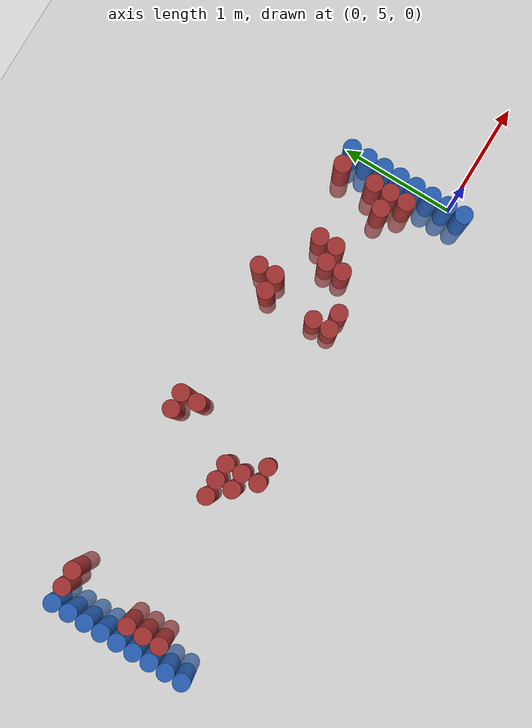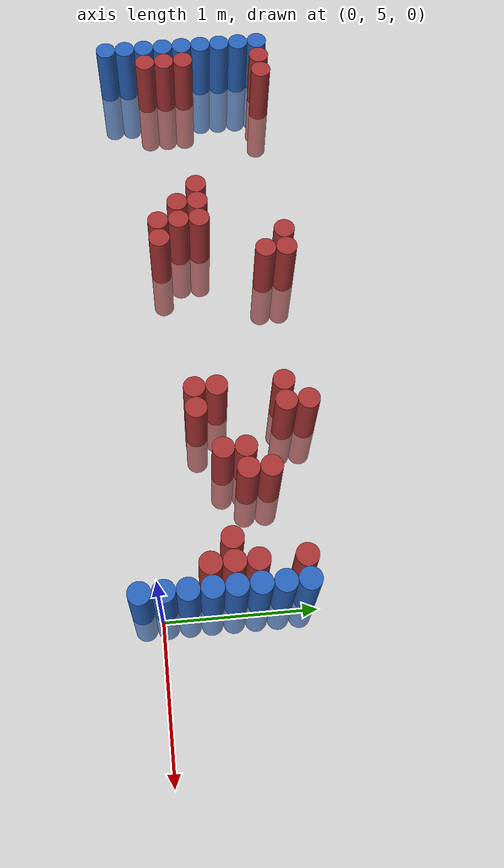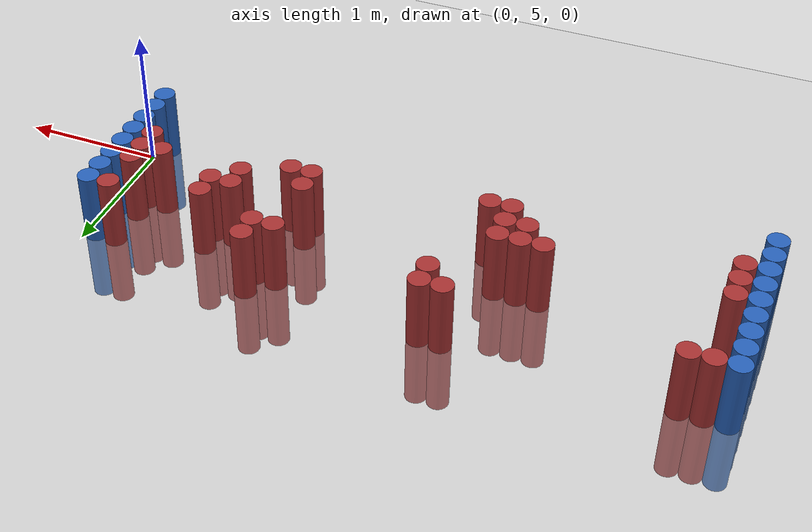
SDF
<sdf version="1.6">
 <world name="world_92">
  <model name="ground_plane">
   <static>1</static>
   <link name="link">
    <collision name="collision">
     <geometry><plane><normal>0 0 1</normal><size>100 100</size></plane></geometry>
     <surface><friction><ode><mu>100</mu><mu2>50</mu2></ode></friction></surface>
    </collision>
    <visual name="visual">
     <cast_shadows>0</cast_shadows>
     <geometry><plane><normal>0 0 1</normal><size>100 100</size></plane></geometry>
     <material>
      <script><uri>file://media/materials/scripts/gazebo.material</uri><name>Gazebo/Grey</name></script>
     </material>
    </visual>
   </link>
  </model>
  <model name="unit_cylinder_92">
   <static>1</static>
   <pose>-0.075000 4.875000 0.000000 0.000000 0.000000 0.000000</pose>
   <link name="link">
    <inertial>
     <mass>1</mass>
     <inertia><ixx>0.145833</ixx><ixy>0</ixy><ixz>0</ixz><iyy>0.145833</iyy><iyz>0</iyz><izz>0.125</izz></inertia>
    </inertial>
    <collision name="collision">
     <geometry><cylinder><radius>0.075000</radius><length>1</length></cylinder></geometry>
    </collision>
    <visual name="visual">
     <geometry><cylinder><radius>0.075000</radius><length>1</length></cylinder></geometry>
     <material>
      <ambient>0.152000 0.379000 0.720000 1</ambient>
      <diffuse>0.152000 0.379000 0.720000 1</diffuse>
     </material>
     <material>
      <script><name>Gazebo/Grey</name><uri>file://media/materials/scripts/gazebo.material</uri></script>
     </material>
    </visual>
   </link>
  </model>
  <model name="unit_cylinder_93">
   <static>1</static>
   <pose>-4.425000 4.875000 0.000000 0.000000 0.000000 0.000000</pose>
   <link name="link">
    <inertial>
     <mass>1</mass>
     <inertia><ixx>0.145833</ixx><ixy>0</ixy><ixz>0</ixz><iyy>0.145833</iyy><iyz>0</iyz><izz>0.125</izz></inertia>
    </inertial>
    <collision name="collision">
     <geometry><cylinder><radius>0.075000</radius><length>1</length></cylinder></geometry>
    </collision>
    <visual name="visual">
     <geometry><cylinder><radius>0.075000</radius><length>1</length></cylinder></geometry>
     <material>
      <ambient>0.152000 0.379000 0.720000 1</ambient>
      <diffuse>0.152000 0.379000 0.720000 1</diffuse>
     </material>
     <material>
      <script><name>Gazebo/Grey</name><uri>file://media/materials/scripts/gazebo.material</uri></script>
     </material>
    </visual>
   </link>
  </model>
  <model name="unit_cylinder_94">
   <static>1</static>
   <pose>-0.075000 5.025000 0.000000 0.000000 0.000000 0.000000</pose>
   <link name="link">
    <inertial>
     <mass>1</mass>
     <inertia><ixx>0.145833</ixx><ixy>0</ixy><ixz>0</ixz><iyy>0.145833</iyy><iyz>0</iyz><izz>0.125</izz></inertia>
    </inertial>
    <collision name="collision">
     <geometry><cylinder><radius>0.075000</radius><length>1</length></cylinder></geometry>
    </collision>
    <visual name="visual">
     <geometry><cylinder><radius>0.075000</radius><length>1</length></cylinder></geometry>
     <material>
      <ambient>0.152000 0.379000 0.720000 1</ambient>
      <diffuse>0.152000 0.379000 0.720000 1</diffuse>
     </material>
     <material>
      <script><name>Gazebo/Grey</name><uri>file://media/materials/scripts/gazebo.material</uri></script>
     </material>
    </visual>
   </link>
  </model>
  <model name="unit_cylinder_95">
   <static>1</static>
   <pose>-4.425000 5.025000 0.000000 0.000000 0.000000 0.000000</pose>
   <link name="link">
    <inertial>
     <mass>1</mass>
     <inertia><ixx>0.145833</ixx><ixy>0</ixy><ixz>0</ixz><iyy>0.145833</iyy><iyz>0</iyz><izz>0.125</izz></inertia>
    </inertial>
    <collision name="collision">
     <geometry><cylinder><radius>0.075000</radius><length>1</length></cylinder></geometry>
    </collision>
    <visual name="visual">
     <geometry><cylinder><radius>0.075000</radius><length>1</length></cylinder></geometry>
     <material>
      <ambient>0.152000 0.379000 0.720000 1</ambient>
      <diffuse>0.152000 0.379000 0.720000 1</diffuse>
     </material>
     <material>
      <script><name>Gazebo/Grey</name><uri>file://media/materials/scripts/gazebo.material</uri></script>
     </material>
    </visual>
   </link>
  </model>
  <model name="unit_cylinder_96">
   <static>1</static>
   <pose>-4.425000 5.175000 0.000000 0.000000 0.000000 0.000000</pose>
   <link name="link">
    <inertial>
     <mass>1</mass>
     <inertia><ixx>0.145833</ixx><ixy>0</ixy><ixz>0</ixz><iyy>0.145833</iyy><iyz>0</iyz><izz>0.125</izz></inertia>
    </inertial>
    <collision name="collision">
     <geometry><cylinder><radius>0.075000</radius><length>1</length></cylinder></geometry>
    </collision>
    <visual name="visual">
     <geometry><cylinder><radius>0.075000</radius><length>1</length></cylinder></geometry>
     <material>
      <ambient>0.152000 0.379000 0.720000 1</ambient>
      <diffuse>0.152000 0.379000 0.720000 1</diffuse>
     </material>
     <material>
      <script><name>Gazebo/Grey</name><uri>file://media/materials/scripts/gazebo.material</uri></script>
     </material>
    </visual>
   </link>
  </model>
  <model name="unit_cylinder_97">
   <static>1</static>
   <pose>-4.425000 5.325000 0.000000 0.000000 0.000000 0.000000</pose>
   <link name="link">
    <inertial>
     <mass>1</mass>
     <inertia><ixx>0.145833</ixx><ixy>0</ixy><ixz>0</ixz><iyy>0.145833</iyy><iyz>0</iyz><izz>0.125</izz></inertia>
    </inertial>
    <collision name="collision">
     <geometry><cylinder><radius>0.075000</radius><length>1</length></cylinder></geometry>
    </collision>
    <visual name="visual">
     <geometry><cylinder><radius>0.075000</radius><length>1</length></cylinder></geometry>
     <material>
      <ambient>0.152000 0.379000 0.720000 1</ambient>
      <diffuse>0.152000 0.379000 0.720000 1</diffuse>
     </material>
     <material>
      <script><name>Gazebo/Grey</name><uri>file://media/materials/scripts/gazebo.material</uri></script>
     </material>
    </visual>
   </link>
  </model>
  <model name="unit_cylinder_98">
   <static>1</static>
   <pose>-4.425000 5.475000 0.000000 0.000000 0.000000 0.000000</pose>
   <link name="link">
    <inertial>
     <mass>1</mass>
     <inertia><ixx>0.145833</ixx><ixy>0</ixy><ixz>0</ixz><iyy>0.145833</iyy><iyz>0</iyz><izz>0.125</izz></inertia>
    </inertial>
    <collision name="collision">
     <geometry><cylinder><radius>0.075000</radius><length>1</length></cylinder></geometry>
    </collision>
    <visual name="visual">
     <geometry><cylinder><radius>0.075000</radius><length>1</length></cylinder></geometry>
     <material>
      <ambient>0.152000 0.379000 0.720000 1</ambient>
      <diffuse>0.152000 0.379000 0.720000 1</diffuse>
     </material>
     <material>
      <script><name>Gazebo/Grey</name><uri>file://media/materials/scripts/gazebo.material</uri></script>
     </material>
    </visual>
   </link>
  </model>
  <model name="unit_cylinder_99">
   <static>1</static>
   <pose>-4.425000 5.625000 0.000000 0.000000 0.000000 0.000000</pose>
   <link name="link">
    <inertial>
     <mass>1</mass>
     <inertia><ixx>0.145833</ixx><ixy>0</ixy><ixz>0</ixz><iyy>0.145833</iyy><iyz>0</iyz><izz>0.125</izz></inertia>
    </inertial>
    <collision name="collision">
     <geometry><cylinder><radius>0.075000</radius><length>1</length></cylinder></geometry>
    </collision>
    <visual name="visual">
     <geometry><cylinder><radius>0.075000</radius><length>1</length></cylinder></geometry>
     <material>
      <ambient>0.152000 0.379000 0.720000 1</ambient>
      <diffuse>0.152000 0.379000 0.720000 1</diffuse>
     </material>
     <material>
      <script><name>Gazebo/Grey</name><uri>file://media/materials/scripts/gazebo.material</uri></script>
     </material>
    </visual>
   </link>
  </model>
  <model name="unit_cylinder_100">
   <static>1</static>
   <pose>-4.425000 5.775000 0.000000 0.000000 0.000000 0.000000</pose>
   <link name="link">
    <inertial>
     <mass>1</mass>
     <inertia><ixx>0.145833</ixx><ixy>0</ixy><ixz>0</ixz><iyy>0.145833</iyy><iyz>0</iyz><izz>0.125</izz></inertia>
    </inertial>
    <collision name="collision">
     <geometry><cylinder><radius>0.075000</radius><length>1</length></cylinder></geometry>
    </collision>
    <visual name="visual">
     <geometry><cylinder><radius>0.075000</radius><length>1</length></cylinder></geometry>
     <material>
      <ambient>0.152000 0.379000 0.720000 1</ambient>
      <diffuse>0.152000 0.379000 0.720000 1</diffuse>
     </material>
     <material>
      <script><name>Gazebo/Grey</name><uri>file://media/materials/scripts/gazebo.material</uri></script>
     </material>
    </visual>
   </link>
  </model>
  <model name="unit_cylinder_101">
   <static>1</static>
   <pose>-4.425000 5.925000 0.000000 0.000000 0.000000 0.000000</pose>
   <link name="link">
    <inertial>
     <mass>1</mass>
     <inertia><ixx>0.145833</ixx><ixy>0</ixy><ixz>0</ixz><iyy>0.145833</iyy><iyz>0</iyz><izz>0.125</izz></inertia>
    </inertial>
    <collision name="collision">
     <geometry><cylinder><radius>0.075000</radius><length>1</length></cylinder></geometry>
    </collision>
    <visual name="visual">
     <geometry><cylinder><radius>0.075000</radius><length>1</length></cylinder></geometry>
     <material>
      <ambient>0.152000 0.379000 0.720000 1</ambient>
      <diffuse>0.152000 0.379000 0.720000 1</diffuse>
     </material>
     <material>
      <script><name>Gazebo/Grey</name><uri>file://media/materials/scripts/gazebo.material</uri></script>
     </material>
    </visual>
   </link>
  </model>
  <model name="unit_cylinder_102">
   <static>1</static>
   <pose>-4.425000 6.075000 0.000000 0.000000 0.000000 0.000000</pose>
   <link name="link">
    <inertial>
     <mass>1</mass>
     <inertia><ixx>0.145833</ixx><ixy>0</ixy><ixz>0</ixz><iyy>0.145833</iyy><iyz>0</iyz><izz>0.125</izz></inertia>
    </inertial>
    <collision name="collision">
     <geometry><cylinder><radius>0.075000</radius><length>1</length></cylinder></geometry>
    </collision>
    <visual name="visual">
     <geometry><cylinder><radius>0.075000</radius><length>1</length></cylinder></geometry>
     <material>
      <ambient>0.152000 0.379000 0.720000 1</ambient>
      <diffuse>0.152000 0.379000 0.720000 1</diffuse>
     </material>
     <material>
      <script><name>Gazebo/Grey</name><uri>file://media/materials/scripts/gazebo.material</uri></script>
     </material>
    </visual>
   </link>
  </model>
  <model name="unit_cylinder_126">
   <static>1</static>
   <pose>-4.275000 5.175000 0.000000 0.000000 0.000000 0.000000</pose>
   <link name="link">
    <inertial>
     <mass>1</mass>
     <inertia><ixx>0.145833</ixx><ixy>0</ixy><ixz>0</ixz><iyy>0.145833</iyy><iyz>0</iyz><izz>0.125</izz></inertia>
    </inertial>
    <collision name="collision">
     <geometry><cylinder><radius>0.075000</radius><length>1</length></cylinder></geometry>
    </collision>
    <visual name="visual">
     <geometry><cylinder><radius>0.075000</radius><length>1</length></cylinder></geometry>
     <material>
      <ambient>0.648000 0.192000 0.192000 1</ambient>
      <diffuse>0.648000 0.192000 0.192000 1</diffuse>
     </material>
     <material>
      <script><name>Gazebo/Grey</name><uri>file://media/materials/scripts/gazebo.material</uri></script>
     </material>
    </visual>
   </link>
  </model>
  <model name="unit_cylinder_127">
   <static>1</static>
   <pose>-4.275000 5.325000 0.000000 0.000000 0.000000 0.000000</pose>
   <link name="link">
    <inertial>
     <mass>1</mass>
     <inertia><ixx>0.145833</ixx><ixy>0</ixy><ixz>0</ixz><iyy>0.145833</iyy><iyz>0</iyz><izz>0.125</izz></inertia>
    </inertial>
    <collision name="collision">
     <geometry><cylinder><radius>0.075000</radius><length>1</length></cylinder></geometry>
    </collision>
    <visual name="visual">
     <geometry><cylinder><radius>0.075000</radius><length>1</length></cylinder></geometry>
     <material>
      <ambient>0.648000 0.192000 0.192000 1</ambient>
      <diffuse>0.648000 0.192000 0.192000 1</diffuse>
     </material>
     <material>
      <script><name>Gazebo/Grey</name><uri>file://media/materials/scripts/gazebo.material</uri></script>
     </material>
    </visual>
   </link>
  </model>
  <model name="unit_cylinder_128">
   <static>1</static>
   <pose>-4.275000 5.475000 0.000000 0.000000 0.000000 0.000000</pose>
   <link name="link">
    <inertial>
     <mass>1</mass>
     <inertia><ixx>0.145833</ixx><ixy>0</ixy><ixz>0</ixz><iyy>0.145833</iyy><iyz>0</iyz><izz>0.125</izz></inertia>
    </inertial>
    <collision name="collision">
     <geometry><cylinder><radius>0.075000</radius><length>1</length></cylinder></geometry>
    </collision>
    <visual name="visual">
     <geometry><cylinder><radius>0.075000</radius><length>1</length></cylinder></geometry>
     <material>
      <ambient>0.648000 0.192000 0.192000 1</ambient>
      <diffuse>0.648000 0.192000 0.192000 1</diffuse>
     </material>
     <material>
      <script><name>Gazebo/Grey</name><uri>file://media/materials/scripts/gazebo.material</uri></script>
     </material>
    </visual>
   </link>
  </model>
  <model name="unit_cylinder_129">
   <static>1</static>
   <pose>-4.275000 6.075000 0.000000 0.000000 0.000000 0.000000</pose>
   <link name="link">
    <inertial>
     <mass>1</mass>
     <inertia><ixx>0.145833</ixx><ixy>0</ixy><ixz>0</ixz><iyy>0.145833</iyy><iyz>0</iyz><izz>0.125</izz></inertia>
    </inertial>
    <collision name="collision">
     <geometry><cylinder><radius>0.075000</radius><length>1</length></cylinder></geometry>
    </collision>
    <visual name="visual">
     <geometry><cylinder><radius>0.075000</radius><length>1</length></cylinder></geometry>
     <material>
      <ambient>0.648000 0.192000 0.192000 1</ambient>
      <diffuse>0.648000 0.192000 0.192000 1</diffuse>
     </material>
     <material>
      <script><name>Gazebo/Grey</name><uri>file://media/materials/scripts/gazebo.material</uri></script>
     </material>
    </visual>
   </link>
  </model>
  <model name="unit_cylinder_137">
   <static>1</static>
   <pose>-4.125000 6.075000 0.000000 0.000000 0.000000 0.000000</pose>
   <link name="link">
    <inertial>
     <mass>1</mass>
     <inertia><ixx>0.145833</ixx><ixy>0</ixy><ixz>0</ixz><iyy>0.145833</iyy><iyz>0</iyz><izz>0.125</izz></inertia>
    </inertial>
    <collision name="collision">
     <geometry><cylinder><radius>0.075000</radius><length>1</length></cylinder></geometry>
    </collision>
    <visual name="visual">
     <geometry><cylinder><radius>0.075000</radius><length>1</length></cylinder></geometry>
     <material>
      <ambient>0.648000 0.192000 0.192000 1</ambient>
      <diffuse>0.648000 0.192000 0.192000 1</diffuse>
     </material>
     <material>
      <script><name>Gazebo/Grey</name><uri>file://media/materials/scripts/gazebo.material</uri></script>
     </material>
    </visual>
   </link>
  </model>
  <model name="unit_cylinder_164">
   <static>1</static>
   <pose>-3.075000 5.475000 0.000000 0.000000 0.000000 0.000000</pose>
   <link name="link">
    <inertial>
     <mass>1</mass>
     <inertia><ixx>0.145833</ixx><ixy>0</ixy><ixz>0</ixz><iyy>0.145833</iyy><iyz>0</iyz><izz>0.125</izz></inertia>
    </inertial>
    <collision name="collision">
     <geometry><cylinder><radius>0.075000</radius><length>1</length></cylinder></geometry>
    </collision>
    <visual name="visual">
     <geometry><cylinder><radius>0.075000</radius><length>1</length></cylinder></geometry>
     <material>
      <ambient>0.648000 0.192000 0.192000 1</ambient>
      <diffuse>0.648000 0.192000 0.192000 1</diffuse>
     </material>
     <material>
      <script><name>Gazebo/Grey</name><uri>file://media/materials/scripts/gazebo.material</uri></script>
     </material>
    </visual>
   </link>
  </model>
  <model name="unit_cylinder_168">
   <static>1</static>
   <pose>-2.925000 5.325000 0.000000 0.000000 0.000000 0.000000</pose>
   <link name="link">
    <inertial>
     <mass>1</mass>
     <inertia><ixx>0.145833</ixx><ixy>0</ixy><ixz>0</ixz><iyy>0.145833</iyy><iyz>0</iyz><izz>0.125</izz></inertia>
    </inertial>
    <collision name="collision">
     <geometry><cylinder><radius>0.075000</radius><length>1</length></cylinder></geometry>
    </collision>
    <visual name="visual">
     <geometry><cylinder><radius>0.075000</radius><length>1</length></cylinder></geometry>
     <material>
      <ambient>0.648000 0.192000 0.192000 1</ambient>
      <diffuse>0.648000 0.192000 0.192000 1</diffuse>
     </material>
     <material>
      <script><name>Gazebo/Grey</name><uri>file://media/materials/scripts/gazebo.material</uri></script>
     </material>
    </visual>
   </link>
  </model>
  <model name="unit_cylinder_169">
   <static>1</static>
   <pose>-2.925000 5.475000 0.000000 0.000000 0.000000 0.000000</pose>
   <link name="link">
    <inertial>
     <mass>1</mass>
     <inertia><ixx>0.145833</ixx><ixy>0</ixy><ixz>0</ixz><iyy>0.145833</iyy><iyz>0</iyz><izz>0.125</izz></inertia>
    </inertial>
    <collision name="collision">
     <geometry><cylinder><radius>0.075000</radius><length>1</length></cylinder></geometry>
    </collision>
    <visual name="visual">
     <geometry><cylinder><radius>0.075000</radius><length>1</length></cylinder></geometry>
     <material>
      <ambient>0.648000 0.192000 0.192000 1</ambient>
      <diffuse>0.648000 0.192000 0.192000 1</diffuse>
     </material>
     <material>
      <script><name>Gazebo/Grey</name><uri>file://media/materials/scripts/gazebo.material</uri></script>
     </material>
    </visual>
   </link>
  </model>
  <model name="unit_cylinder_172">
   <static>1</static>
   <pose>-2.775000 5.175000 0.000000 0.000000 0.000000 0.000000</pose>
   <link name="link">
    <inertial>
     <mass>1</mass>
     <inertia><ixx>0.145833</ixx><ixy>0</ixy><ixz>0</ixz><iyy>0.145833</iyy><iyz>0</iyz><izz>0.125</izz></inertia>
    </inertial>
    <collision name="collision">
     <geometry><cylinder><radius>0.075000</radius><length>1</length></cylinder></geometry>
    </collision>
    <visual name="visual">
     <geometry><cylinder><radius>0.075000</radius><length>1</length></cylinder></geometry>
     <material>
      <ambient>0.648000 0.192000 0.192000 1</ambient>
      <diffuse>0.648000 0.192000 0.192000 1</diffuse>
     </material>
     <material>
      <script><name>Gazebo/Grey</name><uri>file://media/materials/scripts/gazebo.material</uri></script>
     </material>
    </visual>
   </link>
  </model>
  <model name="unit_cylinder_173">
   <static>1</static>
   <pose>-2.775000 5.325000 0.000000 0.000000 0.000000 0.000000</pose>
   <link name="link">
    <inertial>
     <mass>1</mass>
     <inertia><ixx>0.145833</ixx><ixy>0</ixy><ixz>0</ixz><iyy>0.145833</iyy><iyz>0</iyz><izz>0.125</izz></inertia>
    </inertial>
    <collision name="collision">
     <geometry><cylinder><radius>0.075000</radius><length>1</length></cylinder></geometry>
    </collision>
    <visual name="visual">
     <geometry><cylinder><radius>0.075000</radius><length>1</length></cylinder></geometry>
     <material>
      <ambient>0.648000 0.192000 0.192000 1</ambient>
      <diffuse>0.648000 0.192000 0.192000 1</diffuse>
     </material>
     <material>
      <script><name>Gazebo/Grey</name><uri>file://media/materials/scripts/gazebo.material</uri></script>
     </material>
    </visual>
   </link>
  </model>
  <model name="unit_cylinder_174">
   <static>1</static>
   <pose>-2.775000 5.475000 0.000000 0.000000 0.000000 0.000000</pose>
   <link name="link">
    <inertial>
     <mass>1</mass>
     <inertia><ixx>0.145833</ixx><ixy>0</ixy><ixz>0</ixz><iyy>0.145833</iyy><iyz>0</iyz><izz>0.125</izz></inertia>
    </inertial>
    <collision name="collision">
     <geometry><cylinder><radius>0.075000</radius><length>1</length></cylinder></geometry>
    </collision>
    <visual name="visual">
     <geometry><cylinder><radius>0.075000</radius><length>1</length></cylinder></geometry>
     <material>
      <ambient>0.648000 0.192000 0.192000 1</ambient>
      <diffuse>0.648000 0.192000 0.192000 1</diffuse>
     </material>
     <material>
      <script><name>Gazebo/Grey</name><uri>file://media/materials/scripts/gazebo.material</uri></script>
     </material>
    </visual>
   </link>
  </model>
  <model name="unit_cylinder_179">
   <static>1</static>
   <pose>-2.625000 5.175000 0.000000 0.000000 0.000000 0.000000</pose>
   <link name="link">
    <inertial>
     <mass>1</mass>
     <inertia><ixx>0.145833</ixx><ixy>0</ixy><ixz>0</ixz><iyy>0.145833</iyy><iyz>0</iyz><izz>0.125</izz></inertia>
    </inertial>
    <collision name="collision">
     <geometry><cylinder><radius>0.075000</radius><length>1</length></cylinder></geometry>
    </collision>
    <visual name="visual">
     <geometry><cylinder><radius>0.075000</radius><length>1</length></cylinder></geometry>
     <material>
      <ambient>0.648000 0.192000 0.192000 1</ambient>
      <diffuse>0.648000 0.192000 0.192000 1</diffuse>
     </material>
     <material>
      <script><name>Gazebo/Grey</name><uri>file://media/materials/scripts/gazebo.material</uri></script>
     </material>
    </visual>
   </link>
  </model>
  <model name="unit_cylinder_180">
   <static>1</static>
   <pose>-2.625000 6.075000 0.000000 0.000000 0.000000 0.000000</pose>
   <link name="link">
    <inertial>
     <mass>1</mass>
     <inertia><ixx>0.145833</ixx><ixy>0</ixy><ixz>0</ixz><iyy>0.145833</iyy><iyz>0</iyz><izz>0.125</izz></inertia>
    </inertial>
    <collision name="collision">
     <geometry><cylinder><radius>0.075000</radius><length>1</length></cylinder></geometry>
    </collision>
    <visual name="visual">
     <geometry><cylinder><radius>0.075000</radius><length>1</length></cylinder></geometry>
     <material>
      <ambient>0.648000 0.192000 0.192000 1</ambient>
      <diffuse>0.648000 0.192000 0.192000 1</diffuse>
     </material>
     <material>
      <script><name>Gazebo/Grey</name><uri>file://media/materials/scripts/gazebo.material</uri></script>
     </material>
    </visual>
   </link>
  </model>
  <model name="unit_cylinder_184">
   <static>1</static>
   <pose>-2.475000 5.925000 0.000000 0.000000 0.000000 0.000000</pose>
   <link name="link">
    <inertial>
     <mass>1</mass>
     <inertia><ixx>0.145833</ixx><ixy>0</ixy><ixz>0</ixz><iyy>0.145833</iyy><iyz>0</iyz><izz>0.125</izz></inertia>
    </inertial>
    <collision name="collision">
     <geometry><cylinder><radius>0.075000</radius><length>1</length></cylinder></geometry>
    </collision>
    <visual name="visual">
     <geometry><cylinder><radius>0.075000</radius><length>1</length></cylinder></geometry>
     <material>
      <ambient>0.648000 0.192000 0.192000 1</ambient>
      <diffuse>0.648000 0.192000 0.192000 1</diffuse>
     </material>
     <material>
      <script><name>Gazebo/Grey</name><uri>file://media/materials/scripts/gazebo.material</uri></script>
     </material>
    </visual>
   </link>
  </model>
  <model name="unit_cylinder_185">
   <static>1</static>
   <pose>-2.475000 6.075000 0.000000 0.000000 0.000000 0.000000</pose>
   <link name="link">
    <inertial>
     <mass>1</mass>
     <inertia><ixx>0.145833</ixx><ixy>0</ixy><ixz>0</ixz><iyy>0.145833</iyy><iyz>0</iyz><izz>0.125</izz></inertia>
    </inertial>
    <collision name="collision">
     <geometry><cylinder><radius>0.075000</radius><length>1</length></cylinder></geometry>
    </collision>
    <visual name="visual">
     <geometry><cylinder><radius>0.075000</radius><length>1</length></cylinder></geometry>
     <material>
      <ambient>0.648000 0.192000 0.192000 1</ambient>
      <diffuse>0.648000 0.192000 0.192000 1</diffuse>
     </material>
     <material>
      <script><name>Gazebo/Grey</name><uri>file://media/materials/scripts/gazebo.material</uri></script>
     </material>
    </visual>
   </link>
  </model>
  <model name="unit_cylinder_189">
   <static>1</static>
   <pose>-1.425000 5.325000 0.000000 0.000000 0.000000 0.000000</pose>
   <link name="link">
    <inertial>
     <mass>1</mass>
     <inertia><ixx>0.145833</ixx><ixy>0</ixy><ixz>0</ixz><iyy>0.145833</iyy><iyz>0</iyz><izz>0.125</izz></inertia>
    </inertial>
    <collision name="collision">
     <geometry><cylinder><radius>0.075000</radius><length>1</length></cylinder></geometry>
    </collision>
    <visual name="visual">
     <geometry><cylinder><radius>0.075000</radius><length>1</length></cylinder></geometry>
     <material>
      <ambient>0.648000 0.192000 0.192000 1</ambient>
      <diffuse>0.648000 0.192000 0.192000 1</diffuse>
     </material>
     <material>
      <script><name>Gazebo/Grey</name><uri>file://media/materials/scripts/gazebo.material</uri></script>
     </material>
    </visual>
   </link>
  </model>
  <model name="unit_cylinder_190">
   <static>1</static>
   <pose>-1.425000 5.475000 0.000000 0.000000 0.000000 0.000000</pose>
   <link name="link">
    <inertial>
     <mass>1</mass>
     <inertia><ixx>0.145833</ixx><ixy>0</ixy><ixz>0</ixz><iyy>0.145833</iyy><iyz>0</iyz><izz>0.125</izz></inertia>
    </inertial>
    <collision name="collision">
     <geometry><cylinder><radius>0.075000</radius><length>1</length></cylinder></geometry>
    </collision>
    <visual name="visual">
     <geometry><cylinder><radius>0.075000</radius><length>1</length></cylinder></geometry>
     <material>
      <ambient>0.648000 0.192000 0.192000 1</ambient>
      <diffuse>0.648000 0.192000 0.192000 1</diffuse>
     </material>
     <material>
      <script><name>Gazebo/Grey</name><uri>file://media/materials/scripts/gazebo.material</uri></script>
     </material>
    </visual>
   </link>
  </model>
  <model name="unit_cylinder_191">
   <static>1</static>
   <pose>-1.425000 5.925000 0.000000 0.000000 0.000000 0.000000</pose>
   <link name="link">
    <inertial>
     <mass>1</mass>
     <inertia><ixx>0.145833</ixx><ixy>0</ixy><ixz>0</ixz><iyy>0.145833</iyy><iyz>0</iyz><izz>0.125</izz></inertia>
    </inertial>
    <collision name="collision">
     <geometry><cylinder><radius>0.075000</radius><length>1</length></cylinder></geometry>
    </collision>
    <visual name="visual">
     <geometry><cylinder><radius>0.075000</radius><length>1</length></cylinder></geometry>
     <material>
      <ambient>0.648000 0.192000 0.192000 1</ambient>
      <diffuse>0.648000 0.192000 0.192000 1</diffuse>
     </material>
     <material>
      <script><name>Gazebo/Grey</name><uri>file://media/materials/scripts/gazebo.material</uri></script>
     </material>
    </visual>
   </link>
  </model>
  <model name="unit_cylinder_194">
   <static>1</static>
   <pose>-1.275000 5.325000 0.000000 0.000000 0.000000 0.000000</pose>
   <link name="link">
    <inertial>
     <mass>1</mass>
     <inertia><ixx>0.145833</ixx><ixy>0</ixy><ixz>0</ixz><iyy>0.145833</iyy><iyz>0</iyz><izz>0.125</izz></inertia>
    </inertial>
    <collision name="collision">
     <geometry><cylinder><radius>0.075000</radius><length>1</length></cylinder></geometry>
    </collision>
    <visual name="visual">
     <geometry><cylinder><radius>0.075000</radius><length>1</length></cylinder></geometry>
     <material>
      <ambient>0.648000 0.192000 0.192000 1</ambient>
      <diffuse>0.648000 0.192000 0.192000 1</diffuse>
     </material>
     <material>
      <script><name>Gazebo/Grey</name><uri>file://media/materials/scripts/gazebo.material</uri></script>
     </material>
    </visual>
   </link>
  </model>
  <model name="unit_cylinder_195">
   <static>1</static>
   <pose>-1.275000 5.925000 0.000000 0.000000 0.000000 0.000000</pose>
   <link name="link">
    <inertial>
     <mass>1</mass>
     <inertia><ixx>0.145833</ixx><ixy>0</ixy><ixz>0</ixz><iyy>0.145833</iyy><iyz>0</iyz><izz>0.125</izz></inertia>
    </inertial>
    <collision name="collision">
     <geometry><cylinder><radius>0.075000</radius><length>1</length></cylinder></geometry>
    </collision>
    <visual name="visual">
     <geometry><cylinder><radius>0.075000</radius><length>1</length></cylinder></geometry>
     <material>
      <ambient>0.648000 0.192000 0.192000 1</ambient>
      <diffuse>0.648000 0.192000 0.192000 1</diffuse>
     </material>
     <material>
      <script><name>Gazebo/Grey</name><uri>file://media/materials/scripts/gazebo.material</uri></script>
     </material>
    </visual>
   </link>
  </model>
  <model name="unit_cylinder_196">
   <static>1</static>
   <pose>-1.275000 6.075000 0.000000 0.000000 0.000000 0.000000</pose>
   <link name="link">
    <inertial>
     <mass>1</mass>
     <inertia><ixx>0.145833</ixx><ixy>0</ixy><ixz>0</ixz><iyy>0.145833</iyy><iyz>0</iyz><izz>0.125</izz></inertia>
    </inertial>
    <collision name="collision">
     <geometry><cylinder><radius>0.075000</radius><length>1</length></cylinder></geometry>
    </collision>
    <visual name="visual">
     <geometry><cylinder><radius>0.075000</radius><length>1</length></cylinder></geometry>
     <material>
      <ambient>0.648000 0.192000 0.192000 1</ambient>
      <diffuse>0.648000 0.192000 0.192000 1</diffuse>
     </material>
     <material>
      <script><name>Gazebo/Grey</name><uri>file://media/materials/scripts/gazebo.material</uri></script>
     </material>
    </visual>
   </link>
  </model>
  <model name="unit_cylinder_201">
   <static>1</static>
   <pose>-0.975000 5.475000 0.000000 0.000000 0.000000 0.000000</pose>
   <link name="link">
    <inertial>
     <mass>1</mass>
     <inertia><ixx>0.145833</ixx><ixy>0</ixy><ixz>0</ixz><iyy>0.145833</iyy><iyz>0</iyz><izz>0.125</izz></inertia>
    </inertial>
    <collision name="collision">
     <geometry><cylinder><radius>0.075000</radius><length>1</length></cylinder></geometry>
    </collision>
    <visual name="visual">
     <geometry><cylinder><radius>0.075000</radius><length>1</length></cylinder></geometry>
     <material>
      <ambient>0.648000 0.192000 0.192000 1</ambient>
      <diffuse>0.648000 0.192000 0.192000 1</diffuse>
     </material>
     <material>
      <script><name>Gazebo/Grey</name><uri>file://media/materials/scripts/gazebo.material</uri></script>
     </material>
    </visual>
   </link>
  </model>
  <model name="unit_cylinder_202">
   <static>1</static>
   <pose>-0.975000 5.625000 0.000000 0.000000 0.000000 0.000000</pose>
   <link name="link">
    <inertial>
     <mass>1</mass>
     <inertia><ixx>0.145833</ixx><ixy>0</ixy><ixz>0</ixz><iyy>0.145833</iyy><iyz>0</iyz><izz>0.125</izz></inertia>
    </inertial>
    <collision name="collision">
     <geometry><cylinder><radius>0.075000</radius><length>1</length></cylinder></geometry>
    </collision>
    <visual name="visual">
     <geometry><cylinder><radius>0.075000</radius><length>1</length></cylinder></geometry>
     <material>
      <ambient>0.648000 0.192000 0.192000 1</ambient>
      <diffuse>0.648000 0.192000 0.192000 1</diffuse>
     </material>
     <material>
      <script><name>Gazebo/Grey</name><uri>file://media/materials/scripts/gazebo.material</uri></script>
     </material>
    </visual>
   </link>
  </model>
  <model name="unit_cylinder_206">
   <static>1</static>
   <pose>-0.825000 5.625000 0.000000 0.000000 0.000000 0.000000</pose>
   <link name="link">
    <inertial>
     <mass>1</mass>
     <inertia><ixx>0.145833</ixx><ixy>0</ixy><ixz>0</ixz><iyy>0.145833</iyy><iyz>0</iyz><izz>0.125</izz></inertia>
    </inertial>
    <collision name="collision">
     <geometry><cylinder><radius>0.075000</radius><length>1</length></cylinder></geometry>
    </collision>
    <visual name="visual">
     <geometry><cylinder><radius>0.075000</radius><length>1</length></cylinder></geometry>
     <material>
      <ambient>0.648000 0.192000 0.192000 1</ambient>
      <diffuse>0.648000 0.192000 0.192000 1</diffuse>
     </material>
     <material>
      <script><name>Gazebo/Grey</name><uri>file://media/materials/scripts/gazebo.material</uri></script>
     </material>
    </visual>
   </link>
  </model>
  <model name="unit_cylinder_207">
   <static>1</static>
   <pose>-0.825000 5.775000 0.000000 0.000000 0.000000 0.000000</pose>
   <link name="link">
    <inertial>
     <mass>1</mass>
     <inertia><ixx>0.145833</ixx><ixy>0</ixy><ixz>0</ixz><iyy>0.145833</iyy><iyz>0</iyz><izz>0.125</izz></inertia>
    </inertial>
    <collision name="collision">
     <geometry><cylinder><radius>0.075000</radius><length>1</length></cylinder></geometry>
    </collision>
    <visual name="visual">
     <geometry><cylinder><radius>0.075000</radius><length>1</length></cylinder></geometry>
     <material>
      <ambient>0.648000 0.192000 0.192000 1</ambient>
      <diffuse>0.648000 0.192000 0.192000 1</diffuse>
     </material>
     <material>
      <script><name>Gazebo/Grey</name><uri>file://media/materials/scripts/gazebo.material</uri></script>
     </material>
    </visual>
   </link>
  </model>
  <model name="unit_cylinder_222">
   <static>1</static>
   <pose>-0.375000 5.475000 0.000000 0.000000 0.000000 0.000000</pose>
   <link name="link">
    <inertial>
     <mass>1</mass>
     <inertia><ixx>0.145833</ixx><ixy>0</ixy><ixz>0</ixz><iyy>0.145833</iyy><iyz>0</iyz><izz>0.125</izz></inertia>
    </inertial>
    <collision name="collision">
     <geometry><cylinder><radius>0.075000</radius><length>1</length></cylinder></geometry>
    </collision>
    <visual name="visual">
     <geometry><cylinder><radius>0.075000</radius><length>1</length></cylinder></geometry>
     <material>
      <ambient>0.648000 0.192000 0.192000 1</ambient>
      <diffuse>0.648000 0.192000 0.192000 1</diffuse>
     </material>
     <material>
      <script><name>Gazebo/Grey</name><uri>file://media/materials/scripts/gazebo.material</uri></script>
     </material>
    </visual>
   </link>
  </model>
  <model name="unit_cylinder_231">
   <static>1</static>
   <pose>-0.225000 5.325000 0.000000 0.000000 0.000000 0.000000</pose>
   <link name="link">
    <inertial>
     <mass>1</mass>
     <inertia><ixx>0.145833</ixx><ixy>0</ixy><ixz>0</ixz><iyy>0.145833</iyy><iyz>0</iyz><izz>0.125</izz></inertia>
    </inertial>
    <collision name="collision">
     <geometry><cylinder><radius>0.075000</radius><length>1</length></cylinder></geometry>
    </collision>
    <visual name="visual">
     <geometry><cylinder><radius>0.075000</radius><length>1</length></cylinder></geometry>
     <material>
      <ambient>0.648000 0.192000 0.192000 1</ambient>
      <diffuse>0.648000 0.192000 0.192000 1</diffuse>
     </material>
     <material>
      <script><name>Gazebo/Grey</name><uri>file://media/materials/scripts/gazebo.material</uri></script>
     </material>
    </visual>
   </link>
  </model>
  <model name="unit_cylinder_232">
   <static>1</static>
   <pose>-0.225000 5.475000 0.000000 0.000000 0.000000 0.000000</pose>
   <link name="link">
    <inertial>
     <mass>1</mass>
     <inertia><ixx>0.145833</ixx><ixy>0</ixy><ixz>0</ixz><iyy>0.145833</iyy><iyz>0</iyz><izz>0.125</izz></inertia>
    </inertial>
    <collision name="collision">
     <geometry><cylinder><radius>0.075000</radius><length>1</length></cylinder></geometry>
    </collision>
    <visual name="visual">
     <geometry><cylinder><radius>0.075000</radius><length>1</length></cylinder></geometry>
     <material>
      <ambient>0.648000 0.192000 0.192000 1</ambient>
      <diffuse>0.648000 0.192000 0.192000 1</diffuse>
     </material>
     <material>
      <script><name>Gazebo/Grey</name><uri>file://media/materials/scripts/gazebo.material</uri></script>
     </material>
    </visual>
   </link>
  </model>
  <model name="unit_cylinder_233">
   <static>1</static>
   <pose>-0.225000 5.625000 0.000000 0.000000 0.000000 0.000000</pose>
   <link name="link">
    <inertial>
     <mass>1</mass>
     <inertia><ixx>0.145833</ixx><ixy>0</ixy><ixz>0</ixz><iyy>0.145833</iyy><iyz>0</iyz><izz>0.125</izz></inertia>
    </inertial>
    <collision name="collision">
     <geometry><cylinder><radius>0.075000</radius><length>1</length></cylinder></geometry>
    </collision>
    <visual name="visual">
     <geometry><cylinder><radius>0.075000</radius><length>1</length></cylinder></geometry>
     <material>
      <ambient>0.648000 0.192000 0.192000 1</ambient>
      <diffuse>0.648000 0.192000 0.192000 1</diffuse>
     </material>
     <material>
      <script><name>Gazebo/Grey</name><uri>file://media/materials/scripts/gazebo.material</uri></script>
     </material>
    </visual>
   </link>
  </model>
  <model name="unit_cylinder_234">
   <static>1</static>
   <pose>-0.225000 5.925000 0.000000 0.000000 0.000000 0.000000</pose>
   <link name="link">
    <inertial>
     <mass>1</mass>
     <inertia><ixx>0.145833</ixx><ixy>0</ixy><ixz>0</ixz><iyy>0.145833</iyy><iyz>0</iyz><izz>0.125</izz></inertia>
    </inertial>
    <collision name="collision">
     <geometry><cylinder><radius>0.075000</radius><length>1</length></cylinder></geometry>
    </collision>
    <visual name="visual">
     <geometry><cylinder><radius>0.075000</radius><length>1</length></cylinder></geometry>
     <material>
      <ambient>0.648000 0.192000 0.192000 1</ambient>
      <diffuse>0.648000 0.192000 0.192000 1</diffuse>
     </material>
     <material>
      <script><name>Gazebo/Grey</name><uri>file://media/materials/scripts/gazebo.material</uri></script>
     </material>
    </visual>
   </link>
  </model>
  <model name="unit_cylinder_247">
   <static>1</static>
   <pose>-0.075000 5.175000 0.000000 0.000000 0.000000 0.000000</pose>
   <link name="link">
    <inertial>
     <mass>1</mass>
     <inertia><ixx>0.145833</ixx><ixy>0</ixy><ixz>0</ixz><iyy>0.145833</iyy><iyz>0</iyz><izz>0.125</izz></inertia>
    </inertial>
    <collision name="collision">
     <geometry><cylinder><radius>0.075000</radius><length>1</length></cylinder></geometry>
    </collision>
    <visual name="visual">
     <geometry><cylinder><radius>0.075000</radius><length>1</length></cylinder></geometry>
     <material>
      <ambient>0.152000 0.379000 0.720000 1</ambient>
      <diffuse>0.152000 0.379000 0.720000 1</diffuse>
     </material>
     <material>
      <script><name>Gazebo/Grey</name><uri>file://media/materials/scripts/gazebo.material</uri></script>
     </material>
    </visual>
   </link>
  </model>
  <model name="unit_cylinder_248">
   <static>1</static>
   <pose>-0.075000 5.325000 0.000000 0.000000 0.000000 0.000000</pose>
   <link name="link">
    <inertial>
     <mass>1</mass>
     <inertia><ixx>0.145833</ixx><ixy>0</ixy><ixz>0</ixz><iyy>0.145833</iyy><iyz>0</iyz><izz>0.125</izz></inertia>
    </inertial>
    <collision name="collision">
     <geometry><cylinder><radius>0.075000</radius><length>1</length></cylinder></geometry>
    </collision>
    <visual name="visual">
     <geometry><cylinder><radius>0.075000</radius><length>1</length></cylinder></geometry>
     <material>
      <ambient>0.152000 0.379000 0.720000 1</ambient>
      <diffuse>0.152000 0.379000 0.720000 1</diffuse>
     </material>
     <material>
      <script><name>Gazebo/Grey</name><uri>file://media/materials/scripts/gazebo.material</uri></script>
     </material>
    </visual>
   </link>
  </model>
  <model name="unit_cylinder_249">
   <static>1</static>
   <pose>-0.075000 5.475000 0.000000 0.000000 0.000000 0.000000</pose>
   <link name="link">
    <inertial>
     <mass>1</mass>
     <inertia><ixx>0.145833</ixx><ixy>0</ixy><ixz>0</ixz><iyy>0.145833</iyy><iyz>0</iyz><izz>0.125</izz></inertia>
    </inertial>
    <collision name="collision">
     <geometry><cylinder><radius>0.075000</radius><length>1</length></cylinder></geometry>
    </collision>
    <visual name="visual">
     <geometry><cylinder><radius>0.075000</radius><length>1</length></cylinder></geometry>
     <material>
      <ambient>0.152000 0.379000 0.720000 1</ambient>
      <diffuse>0.152000 0.379000 0.720000 1</diffuse>
     </material>
     <material>
      <script><name>Gazebo/Grey</name><uri>file://media/materials/scripts/gazebo.material</uri></script>
     </material>
    </visual>
   </link>
  </model>
  <model name="unit_cylinder_250">
   <static>1</static>
   <pose>-0.075000 5.625000 0.000000 0.000000 0.000000 0.000000</pose>
   <link name="link">
    <inertial>
     <mass>1</mass>
     <inertia><ixx>0.145833</ixx><ixy>0</ixy><ixz>0</ixz><iyy>0.145833</iyy><iyz>0</iyz><izz>0.125</izz></inertia>
    </inertial>
    <collision name="collision">
     <geometry><cylinder><radius>0.075000</radius><length>1</length></cylinder></geometry>
    </collision>
    <visual name="visual">
     <geometry><cylinder><radius>0.075000</radius><length>1</length></cylinder></geometry>
     <material>
      <ambient>0.152000 0.379000 0.720000 1</ambient>
      <diffuse>0.152000 0.379000 0.720000 1</diffuse>
     </material>
     <material>
      <script><name>Gazebo/Grey</name><uri>file://media/materials/scripts/gazebo.material</uri></script>
     </material>
    </visual>
   </link>
  </model>
  <model name="unit_cylinder_251">
   <static>1</static>
   <pose>-0.075000 5.775000 0.000000 0.000000 0.000000 0.000000</pose>
   <link name="link">
    <inertial>
     <mass>1</mass>
     <inertia><ixx>0.145833</ixx><ixy>0</ixy><ixz>0</ixz><iyy>0.145833</iyy><iyz>0</iyz><izz>0.125</izz></inertia>
    </inertial>
    <collision name="collision">
     <geometry><cylinder><radius>0.075000</radius><length>1</length></cylinder></geometry>
    </collision>
    <visual name="visual">
     <geometry><cylinder><radius>0.075000</radius><length>1</length></cylinder></geometry>
     <material>
      <ambient>0.152000 0.379000 0.720000 1</ambient>
      <diffuse>0.152000 0.379000 0.720000 1</diffuse>
     </material>
     <material>
      <script><name>Gazebo/Grey</name><uri>file://media/materials/scripts/gazebo.material</uri></script>
     </material>
    </visual>
   </link>
  </model>
  <model name="unit_cylinder_252">
   <static>1</static>
   <pose>-0.075000 5.925000 0.000000 0.000000 0.000000 0.000000</pose>
   <link name="link">
    <inertial>
     <mass>1</mass>
     <inertia><ixx>0.145833</ixx><ixy>0</ixy><ixz>0</ixz><iyy>0.145833</iyy><iyz>0</iyz><izz>0.125</izz></inertia>
    </inertial>
    <collision name="collision">
     <geometry><cylinder><radius>0.075000</radius><length>1</length></cylinder></geometry>
    </collision>
    <visual name="visual">
     <geometry><cylinder><radius>0.075000</radius><length>1</length></cylinder></geometry>
     <material>
      <ambient>0.152000 0.379000 0.720000 1</ambient>
      <diffuse>0.152000 0.379000 0.720000 1</diffuse>
     </material>
     <material>
      <script><name>Gazebo/Grey</name><uri>file://media/materials/scripts/gazebo.material</uri></script>
     </material>
    </visual>
   </link>
  </model>
 </world>
</sdf>
